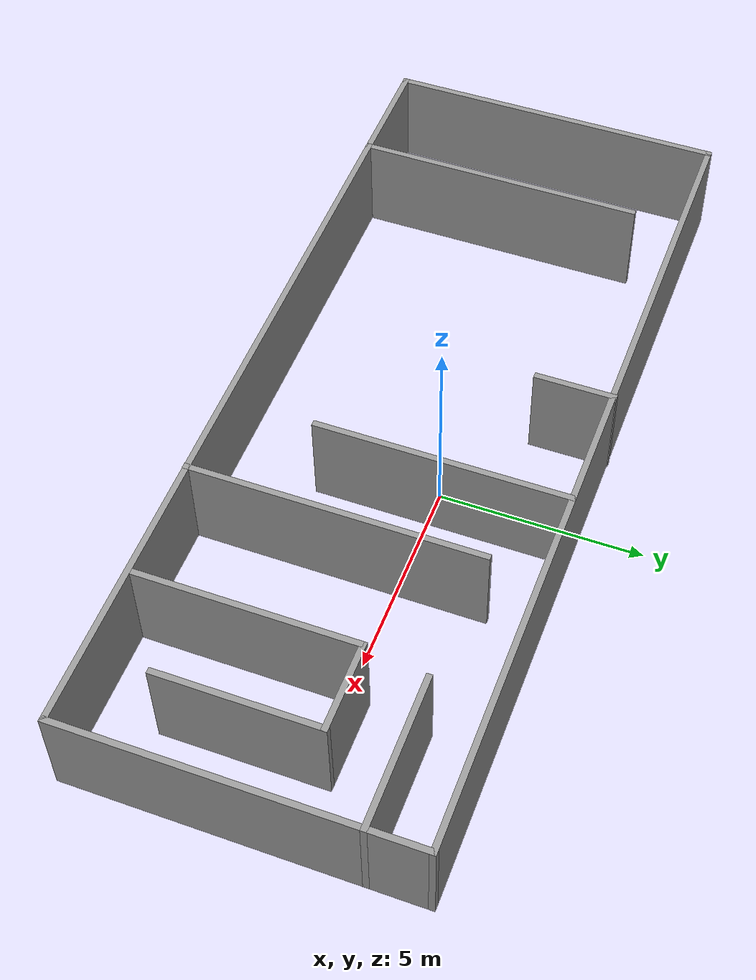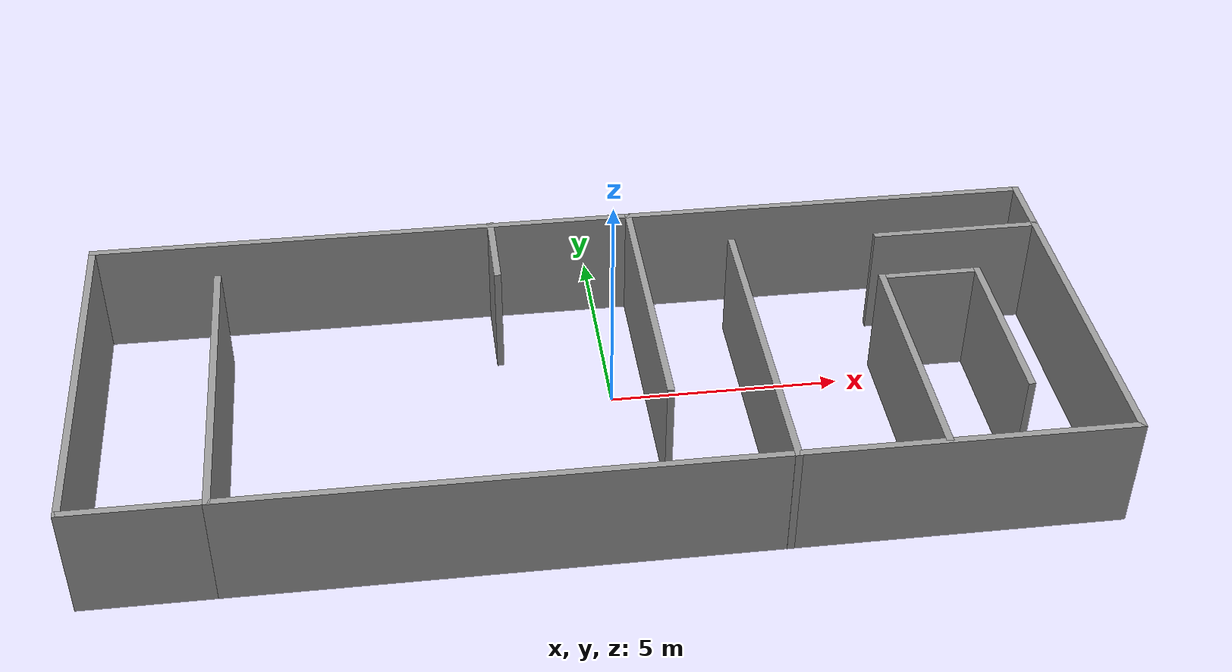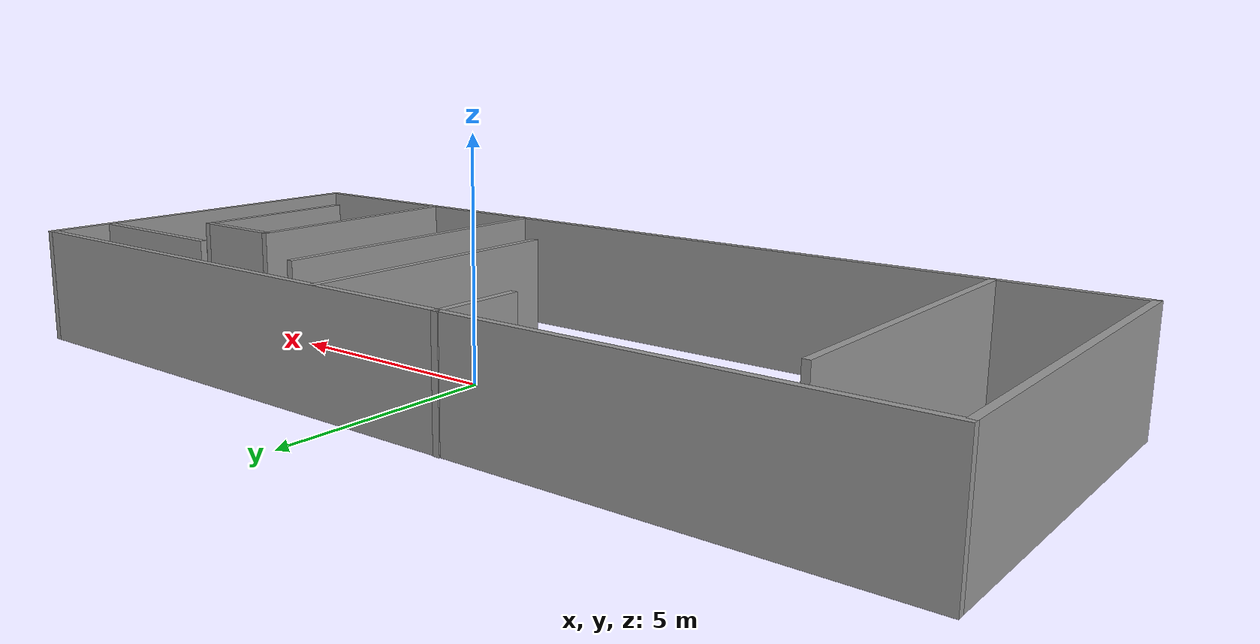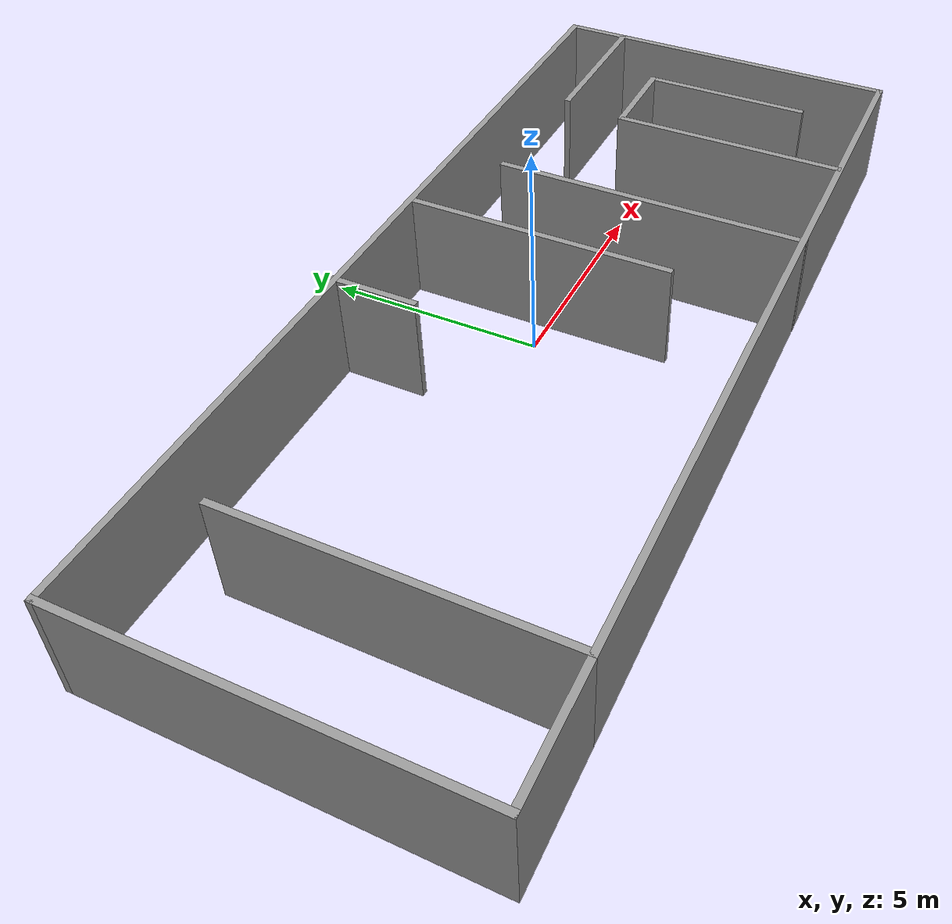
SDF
<?xml version='1.0'?>
<sdf version='1.7'>
  <model name='environment'>
    <pose>-0.635 -0.787513 0 0 -0 0</pose>
    <link name='Wall_0'>
      <collision name='Wall_0_Collision'>
        <geometry>
          <box>
            <size>7.25 0.15 2.5</size>
          </box>
        </geometry>
        <pose>0 0 1.25 0 -0 0</pose>
      </collision>
      <visual name='Wall_0_Visual'>
        <pose>0 0 1.25 0 -0 0</pose>
        <geometry>
          <box>
            <size>7.25 0.15 2.5</size>
          </box>
        </geometry>
        <material>
          <script>
            <uri>file://media/materials/scripts/gazebo.material</uri>
            <name>Gazebo/Grey</name>
          </script>
          <ambient>1 1 1 1</ambient>
        </material>
        <meta>
          <layer>0</layer>
        </meta>
      </visual>
      <pose>-7.675 -0.632486 0 0 -0 -1.5708</pose>
    </link>
    <link name='Wall_1'>
      <collision name='Wall_1_Collision'>
        <geometry>
          <box>
            <size>18.25 0.15 2.5</size>
          </box>
        </geometry>
        <pose>0 0 1.25 0 -0 0</pose>
      </collision>
      <visual name='Wall_1_Visual'>
        <pose>0 0 1.25 0 -0 0</pose>
        <geometry>
          <box>
            <size>18.25 0.15 2.5</size>
          </box>
        </geometry>
        <material>
          <script>
            <uri>file://media/materials/scripts/gazebo.material</uri>
            <name>Gazebo/Grey</name>
          </script>
          <ambient>1 1 1 1</ambient>
        </material>
        <meta>
          <layer>0</layer>
        </meta>
      </visual>
      <pose>1.375 -4.18249 0 0 -0 0</pose>
    </link>
    <link name='Wall_11'>
      <collision name='Wall_11_Collision'>
        <geometry>
          <box>
            <size>7.25 0.15 2.5</size>
          </box>
        </geometry>
        <pose>0 0 1.25 0 -0 0</pose>
      </collision>
      <visual name='Wall_11_Visual'>
        <pose>0 0 1.25 0 -0 0</pose>
        <geometry>
          <box>
            <size>7.25 0.15 2.5</size>
          </box>
        </geometry>
        <material>
          <script>
            <uri>file://media/materials/scripts/gazebo.material</uri>
            <name>Gazebo/Grey</name>
          </script>
          <ambient>1 1 1 1</ambient>
        </material>
        <meta>
          <layer>0</layer>
        </meta>
      </visual>
      <pose>3.57136 -0.639904 0 0 -0 -1.5708</pose>
    </link>
    <link name='Wall_13'>
      <collision name='Wall_13_Collision'>
        <geometry>
          <box>
            <size>6.25 0.15 2.5</size>
          </box>
        </geometry>
        <pose>0 0 1.25 0 -0 0</pose>
      </collision>
      <visual name='Wall_13_Visual'>
        <pose>0 0 1.25 0 -0 0</pose>
        <geometry>
          <box>
            <size>6.25 0.15 2.5</size>
          </box>
        </geometry>
        <material>
          <script>
            <uri>file://media/materials/scripts/gazebo.material</uri>
            <name>Gazebo/Grey</name>
          </script>
          <ambient>1 1 1 1</ambient>
        </material>
        <meta>
          <layer>0</layer>
        </meta>
      </visual>
      <pose>1.43758 1.10189 0 0 -0 -1.5708</pose>
    </link>
    <link name='Wall_15'>
      <collision name='Wall_15_Collision'>
        <geometry>
          <box>
            <size>5.5 0.15 2.5</size>
          </box>
        </geometry>
        <pose>0 0 1.25 0 -0 0</pose>
      </collision>
      <visual name='Wall_15_Visual'>
        <pose>0 0 1.25 0 -0 0</pose>
        <geometry>
          <box>
            <size>5.5 0.15 2.5</size>
          </box>
        </geometry>
        <material>
          <script>
            <uri>file://media/materials/scripts/gazebo.material</uri>
            <name>Gazebo/Grey</name>
          </script>
          <ambient>1 1 1 1</ambient>
        </material>
        <meta>
          <layer>0</layer>
        </meta>
      </visual>
      <pose>6.56216 -1.4634 0 0 -0 1.5708</pose>
    </link>
    <link name='Wall_16'>
      <collision name='Wall_16_Collision'>
        <geometry>
          <box>
            <size>2.25 0.15 2.5</size>
          </box>
        </geometry>
        <pose>0 0 1.25 0 -0 0</pose>
      </collision>
      <visual name='Wall_16_Visual'>
        <pose>0 0 1.25 0 -0 0</pose>
        <geometry>
          <box>
            <size>2.25 0.15 2.5</size>
          </box>
        </geometry>
        <material>
          <script>
            <uri>file://media/materials/scripts/gazebo.material</uri>
            <name>Gazebo/Grey</name>
          </script>
          <ambient>1 1 1 1</ambient>
        </material>
        <meta>
          <layer>0</layer>
        </meta>
      </visual>
      <pose>7.61216 1.2116 0 0 -0 0</pose>
    </link>
    <link name='Wall_17'>
      <collision name='Wall_17_Collision'>
        <geometry>
          <box>
            <size>4 0.15 2.5</size>
          </box>
        </geometry>
        <pose>0 0 1.25 0 -0 0</pose>
      </collision>
      <visual name='Wall_17_Visual'>
        <pose>0 0 1.25 0 -0 0</pose>
        <geometry>
          <box>
            <size>4 0.15 2.5</size>
          </box>
        </geometry>
        <material>
          <script>
            <uri>file://media/materials/scripts/gazebo.material</uri>
            <name>Gazebo/Grey</name>
          </script>
          <ambient>1 1 1 1</ambient>
        </material>
        <meta>
          <layer>0</layer>
        </meta>
      </visual>
      <pose>8.66216 -0.713399 0 0 -0 -1.5708</pose>
    </link>
    <link name='Wall_2'>
      <collision name='Wall_2_Collision'>
        <geometry>
          <box>
            <size>8.5 0.15 2.5</size>
          </box>
        </geometry>
        <pose>0 0 1.25 0 -0 0</pose>
      </collision>
      <visual name='Wall_2_Visual'>
        <pose>0 0 1.25 0 -0 0</pose>
        <geometry>
          <box>
            <size>8.5 0.15 2.5</size>
          </box>
        </geometry>
        <material>
          <script>
            <uri>file://media/materials/scripts/gazebo.material</uri>
            <name>Gazebo/Grey</name>
          </script>
          <ambient>1 1 1 1</ambient>
        </material>
        <meta>
          <layer>0</layer>
        </meta>
      </visual>
      <pose>10.425 -0.007487 0 0 -0 1.5708</pose>
    </link>
    <link name='Wall_3'>
      <collision name='Wall_3_Collision'>
        <geometry>
          <box>
            <size>21 0.15 2.5</size>
          </box>
        </geometry>
        <pose>0 0 1.25 0 -0 0</pose>
      </collision>
      <visual name='Wall_3_Visual'>
        <pose>0 0 1.25 0 -0 0</pose>
        <geometry>
          <box>
            <size>21 0.15 2.5</size>
          </box>
        </geometry>
        <material>
          <script>
            <uri>file://media/materials/scripts/gazebo.material</uri>
            <name>Gazebo/Grey</name>
          </script>
          <ambient>1 1 1 1</ambient>
        </material>
        <meta>
          <layer>0</layer>
        </meta>
      </visual>
      <pose>0 4.16751 0 0 -0 3.14159</pose>
    </link>
    <link name='Wall_4'>
      <collision name='Wall_4_Collision'>
        <geometry>
          <box>
            <size>8.5 0.15 2.5</size>
          </box>
        </geometry>
        <pose>0 0 1.25 0 -0 0</pose>
      </collision>
      <visual name='Wall_4_Visual'>
        <pose>0 0 1.25 0 -0 0</pose>
        <geometry>
          <box>
            <size>8.5 0.15 2.5</size>
          </box>
        </geometry>
        <material>
          <script>
            <uri>file://media/materials/scripts/gazebo.material</uri>
            <name>Gazebo/Grey</name>
          </script>
          <ambient>1 1 1 1</ambient>
        </material>
        <meta>
          <layer>0</layer>
        </meta>
      </visual>
      <pose>-10.425 -0.007487 0 0 -0 -1.5708</pose>
    </link>
    <link name='Wall_5'>
      <collision name='Wall_5_Collision'>
        <geometry>
          <box>
            <size>2.9 0.15 2.5</size>
          </box>
        </geometry>
        <pose>0 0 1.25 0 -0 0</pose>
      </collision>
      <visual name='Wall_5_Visual'>
        <pose>0 0 1.25 0 -0 0</pose>
        <geometry>
          <box>
            <size>2.9 0.15 2.5</size>
          </box>
        </geometry>
        <material>
          <script>
            <uri>file://media/materials/scripts/gazebo.material</uri>
            <name>Gazebo/Grey</name>
          </script>
          <ambient>1 1 1 1</ambient>
        </material>
        <meta>
          <layer>0</layer>
        </meta>
      </visual>
      <pose>-9.05 -4.18249 0 0 -0 0</pose>
    </link>
    <link name='Wall_7'>
      <collision name='Wall_7_Collision'>
        <geometry>
          <box>
            <size>3.75 0.15 2.5</size>
          </box>
        </geometry>
        <pose>0 0 1.25 0 -0 0</pose>
      </collision>
      <visual name='Wall_7_Visual'>
        <pose>0 0 1.25 0 -0 0</pose>
        <geometry>
          <box>
            <size>3.75 0.15 2.5</size>
          </box>
        </geometry>
        <material>
          <script>
            <uri>file://media/materials/scripts/gazebo.material</uri>
            <name>Gazebo/Grey</name>
          </script>
          <ambient>1 1 1 1</ambient>
        </material>
        <meta>
          <layer>0</layer>
        </meta>
      </visual>
      <pose>8.625 2.74751 0 0 -0 3.14159</pose>
    </link>
    <link name='Wall_9'>
      <collision name='Wall_9_Collision'>
        <geometry>
          <box>
            <size>2 0.15 2.5</size>
          </box>
        </geometry>
        <pose>0 0 1.25 0 -0 0</pose>
      </collision>
      <visual name='Wall_9_Visual'>
        <pose>0 0 1.25 0 -0 0</pose>
        <geometry>
          <box>
            <size>2 0.15 2.5</size>
          </box>
        </geometry>
        <material>
          <script>
            <uri>file://media/materials/scripts/gazebo.material</uri>
            <name>Gazebo/Grey</name>
          </script>
          <ambient>1 1 1 1</ambient>
        </material>
        <meta>
          <layer>0</layer>
        </meta>
      </visual>
      <pose>-1.675 3.2649 0 0 -0 1.5708</pose>
    </link>
    <static>1</static>
  </model>
</sdf>
